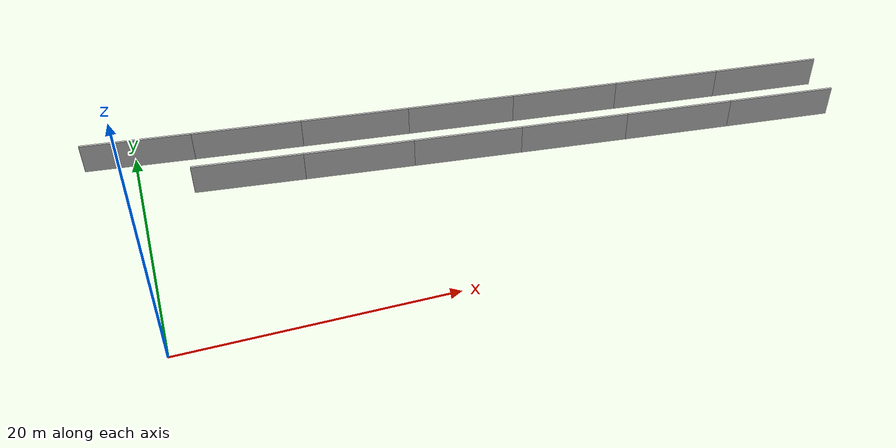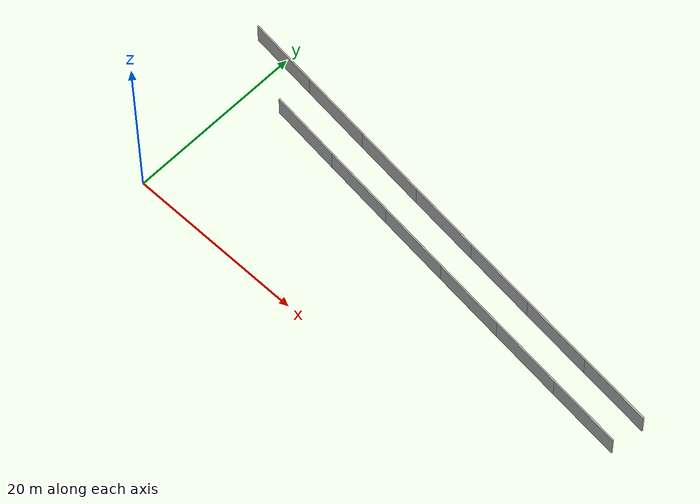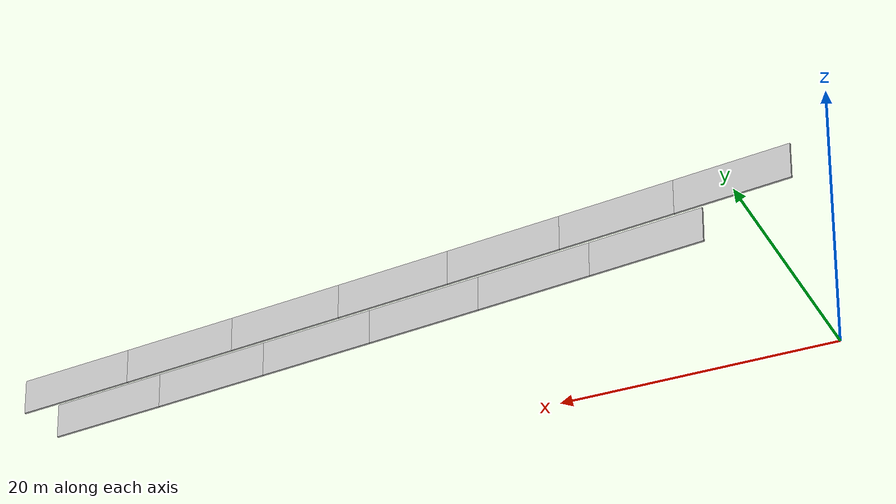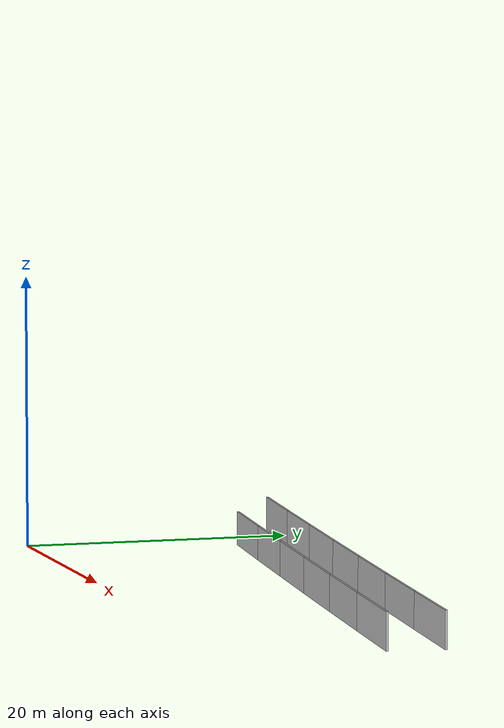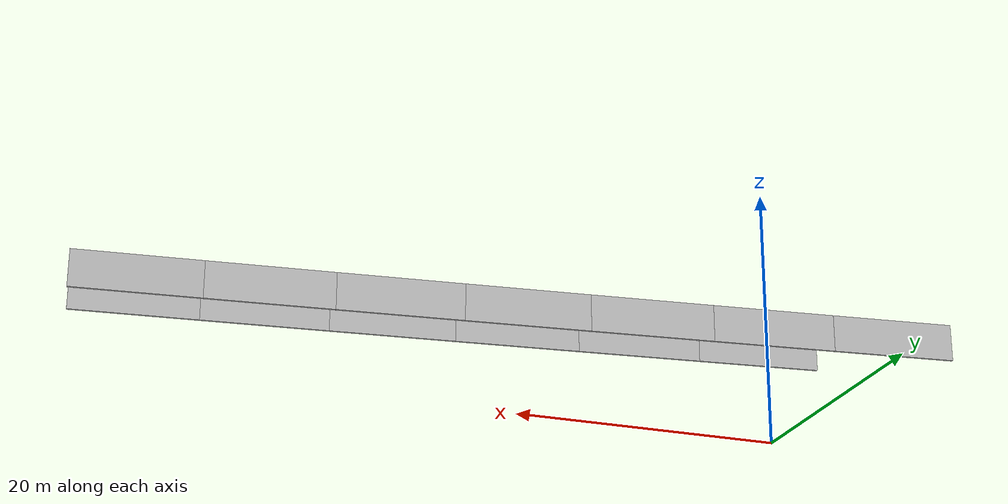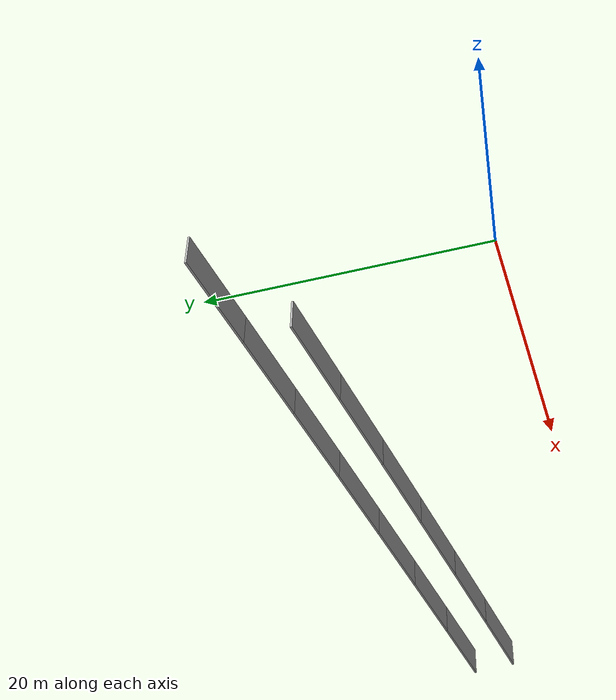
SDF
<?xml version="1.0" ?>
<sdf version="1.6">
  <model name="sps_3602">
    <pose frame="">0 0 0 0 -0 0</pose>
    <static>1</static>
    <self_collide>0</self_collide>
    <allow_auto_disable>0</allow_auto_disable>
    <link name="Wall4226">
      <kinematic>0</kinematic>
      <gravity>1</gravity>
      <self_collide>0</self_collide>
      <collision name="collision">
        <geometry>
          <box>
            <size>8.25185 0.15 2.5</size>
          </box>
        </geometry>
        <pose frame="">0 0 0 0 -0 0</pose>
      </collision>
      <visual name="visual">
        <geometry>
          <box>
            <size>8.25185 0.15 2.5</size>
          </box>
        </geometry>
        <pose frame="">0 0 0 0 -0 0</pose>
        <cast_shadows>1</cast_shadows>
        <transparency>0.0</transparency>
      </visual>
      <pose frame="">0.306663 19.3548 1.25 0 0 -0.116872</pose>
    </link>
    <link name="Wall4227">
      <kinematic>0</kinematic>
      <gravity>1</gravity>
      <self_collide>0</self_collide>
      <collision name="collision">
        <geometry>
          <box>
            <size>8.25187 0.15 2.5</size>
          </box>
        </geometry>
        <pose frame="">0 0 0 0 -0 0</pose>
      </collision>
      <visual name="visual">
        <geometry>
          <box>
            <size>8.25187 0.15 2.5</size>
          </box>
        </geometry>
        <pose frame="">0 0 0 0 -0 0</pose>
        <cast_shadows>1</cast_shadows>
        <transparency>0.0</transparency>
      </visual>
      <pose frame="">8.50335 18.4022 1.25 0 0 -0.114526</pose>
    </link>
    <link name="Wall4228">
      <kinematic>0</kinematic>
      <gravity>1</gravity>
      <self_collide>0</self_collide>
      <collision name="collision">
        <geometry>
          <box>
            <size>8.25166 0.15 2.5</size>
          </box>
        </geometry>
        <pose frame="">0 0 0 0 -0 0</pose>
      </collision>
      <visual name="visual">
        <geometry>
          <box>
            <size>8.25166 0.15 2.5</size>
          </box>
        </geometry>
        <pose frame="">0 0 0 0 -0 0</pose>
        <cast_shadows>1</cast_shadows>
        <transparency>0.0</transparency>
      </visual>
      <pose frame="">16.7022 17.469 1.25 0 0 -0.11214</pose>
    </link>
    <link name="Wall4229">
      <kinematic>0</kinematic>
      <gravity>1</gravity>
      <self_collide>0</self_collide>
      <collision name="collision">
        <geometry>
          <box>
            <size>8.25181 0.15 2.5</size>
          </box>
        </geometry>
        <pose frame="">0 0 0 0 -0 0</pose>
      </collision>
      <visual name="visual">
        <geometry>
          <box>
            <size>8.25181 0.15 2.5</size>
          </box>
        </geometry>
        <pose frame="">0 0 0 0 -0 0</pose>
        <cast_shadows>1</cast_shadows>
        <transparency>0.0</transparency>
      </visual>
      <pose frame="">24.9032 16.5553 1.25 0 0 -0.109771</pose>
    </link>
    <link name="Wall4230">
      <kinematic>0</kinematic>
      <gravity>1</gravity>
      <self_collide>0</self_collide>
      <collision name="collision">
        <geometry>
          <box>
            <size>8.25198 0.15 2.5</size>
          </box>
        </geometry>
        <pose frame="">0 0 0 0 -0 0</pose>
      </collision>
      <visual name="visual">
        <geometry>
          <box>
            <size>8.25198 0.15 2.5</size>
          </box>
        </geometry>
        <pose frame="">0 0 0 0 -0 0</pose>
        <cast_shadows>1</cast_shadows>
        <transparency>0.0</transparency>
      </visual>
      <pose frame="">33.1064 15.6609 1.25 0 0 -0.107425</pose>
    </link>
    <link name="Wall4231">
      <kinematic>0</kinematic>
      <gravity>1</gravity>
      <self_collide>0</self_collide>
      <collision name="collision">
        <geometry>
          <box>
            <size>8.25174 0.15 2.5</size>
          </box>
        </geometry>
        <pose frame="">0 0 0 0 -0 0</pose>
      </collision>
      <visual name="visual">
        <geometry>
          <box>
            <size>8.25174 0.15 2.5</size>
          </box>
        </geometry>
        <pose frame="">0 0 0 0 -0 0</pose>
        <cast_shadows>1</cast_shadows>
        <transparency>0.0</transparency>
      </visual>
      <pose frame="">41.3118 14.7858 1.25 0 0 -0.10507</pose>
    </link>
    <link name="Wall4232">
      <kinematic>0</kinematic>
      <gravity>1</gravity>
      <self_collide>0</self_collide>
      <collision name="collision">
        <geometry>
          <box>
            <size>8.25202 0.15 2.5</size>
          </box>
        </geometry>
        <pose frame="">0 0 0 0 -0 0</pose>
      </collision>
      <visual name="visual">
        <geometry>
          <box>
            <size>8.25202 0.15 2.5</size>
          </box>
        </geometry>
        <pose frame="">0 0 0 0 -0 0</pose>
        <cast_shadows>1</cast_shadows>
        <transparency>0.0</transparency>
      </visual>
      <pose frame="">49.5192 13.9302 1.25 0 0 -0.10268</pose>
    </link>
    <link name="Wall8969">
      <kinematic>0</kinematic>
      <gravity>1</gravity>
      <self_collide>0</self_collide>
      <collision name="collision">
        <geometry>
          <box>
            <size>8.26198 0.15 2.5</size>
          </box>
        </geometry>
        <pose frame="">0 0 0 0 -0 0</pose>
      </collision>
      <visual name="visual">
        <geometry>
          <box>
            <size>8.26198 0.15 2.5</size>
          </box>
        </geometry>
        <pose frame="">0 0 0 0 -0 0</pose>
        <cast_shadows>1</cast_shadows>
        <transparency>0.0</transparency>
      </visual>
      <pose frame="">7.94335 14.6851 1.25 0 0 -0.114557</pose>
    </link>
    <link name="Wall8970">
      <kinematic>0</kinematic>
      <gravity>1</gravity>
      <self_collide>0</self_collide>
      <collision name="collision">
        <geometry>
          <box>
            <size>8.26172 0.15 2.5</size>
          </box>
        </geometry>
        <pose frame="">0 0 0 0 -0 0</pose>
      </collision>
      <visual name="visual">
        <geometry>
          <box>
            <size>8.26172 0.15 2.5</size>
          </box>
        </geometry>
        <pose frame="">0 0 0 0 -0 0</pose>
        <cast_shadows>1</cast_shadows>
        <transparency>0.0</transparency>
      </visual>
      <pose frame="">16.1522 13.7504 1.25 0 0 -0.112196</pose>
    </link>
    <link name="Wall8971">
      <kinematic>0</kinematic>
      <gravity>1</gravity>
      <self_collide>0</self_collide>
      <collision name="collision">
        <geometry>
          <box>
            <size>8.2618 0.15 2.5</size>
          </box>
        </geometry>
        <pose frame="">0 0 0 0 -0 0</pose>
      </collision>
      <visual name="visual">
        <geometry>
          <box>
            <size>8.2618 0.15 2.5</size>
          </box>
        </geometry>
        <pose frame="">0 0 0 0 -0 0</pose>
        <cast_shadows>1</cast_shadows>
        <transparency>0.0</transparency>
      </visual>
      <pose frame="">24.3631 12.8352 1.25 0 0 -0.109809</pose>
    </link>
    <link name="Wall8972">
      <kinematic>0</kinematic>
      <gravity>1</gravity>
      <self_collide>0</self_collide>
      <collision name="collision">
        <geometry>
          <box>
            <size>8.26182 0.15 2.5</size>
          </box>
        </geometry>
        <pose frame="">0 0 0 0 -0 0</pose>
      </collision>
      <visual name="visual">
        <geometry>
          <box>
            <size>8.26182 0.15 2.5</size>
          </box>
        </geometry>
        <pose frame="">0 0 0 0 -0 0</pose>
        <cast_shadows>1</cast_shadows>
        <transparency>0.0</transparency>
      </visual>
      <pose frame="">32.5762 11.9395 1.25 0 0 -0.107453</pose>
    </link>
    <link name="Wall8973">
      <kinematic>0</kinematic>
      <gravity>1</gravity>
      <self_collide>0</self_collide>
      <collision name="collision">
        <geometry>
          <box>
            <size>8.26176 0.15 2.5</size>
          </box>
        </geometry>
        <pose frame="">0 0 0 0 -0 0</pose>
      </collision>
      <visual name="visual">
        <geometry>
          <box>
            <size>8.26176 0.15 2.5</size>
          </box>
        </geometry>
        <pose frame="">0 0 0 0 -0 0</pose>
        <cast_shadows>1</cast_shadows>
        <transparency>0.0</transparency>
      </visual>
      <pose frame="">40.7913 11.0632 1.25 0 0 -0.105083</pose>
    </link>
    <link name="Wall8974">
      <kinematic>0</kinematic>
      <gravity>1</gravity>
      <self_collide>0</self_collide>
      <collision name="collision">
        <geometry>
          <box>
            <size>8.262 0.15 2.5</size>
          </box>
        </geometry>
        <pose frame="">0 0 0 0 -0 0</pose>
      </collision>
      <visual name="visual">
        <geometry>
          <box>
            <size>8.262 0.15 2.5</size>
          </box>
        </geometry>
        <pose frame="">0 0 0 0 -0 0</pose>
        <cast_shadows>1</cast_shadows>
        <transparency>0.0</transparency>
      </visual>
      <pose frame="">49.0087 10.2063 1.25 0 0 -0.102726</pose>
    </link>
  </model>
</sdf>
